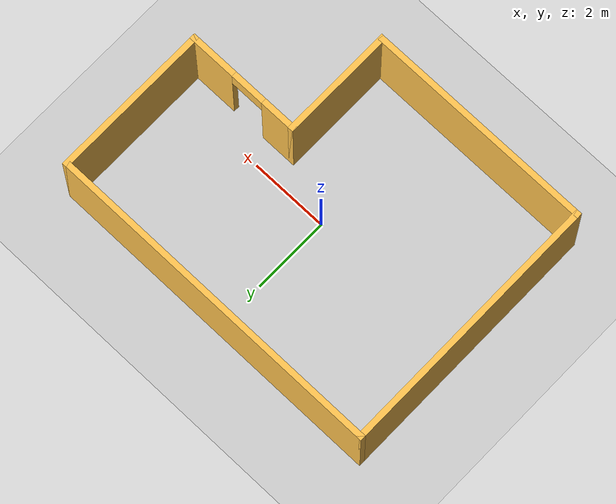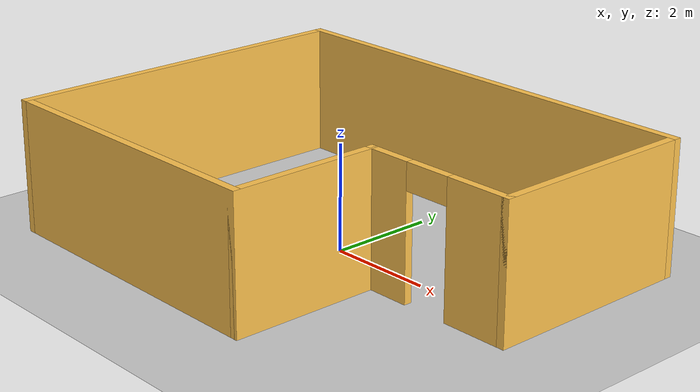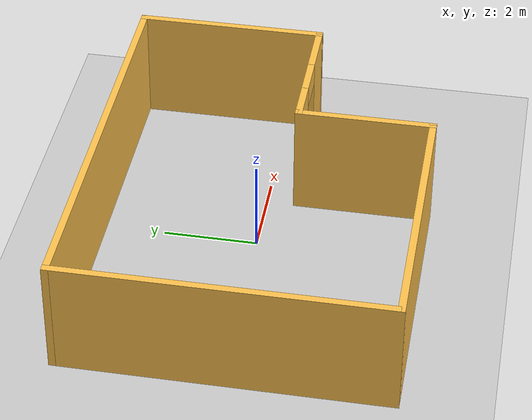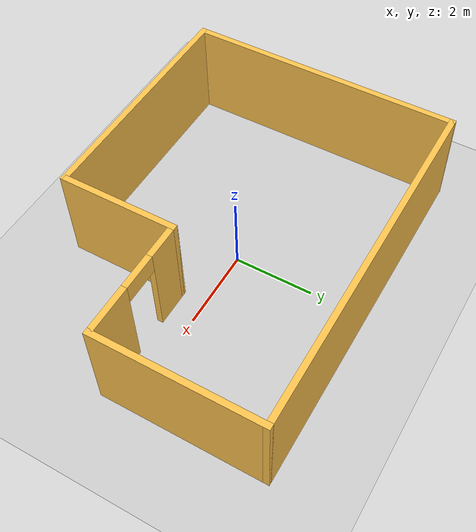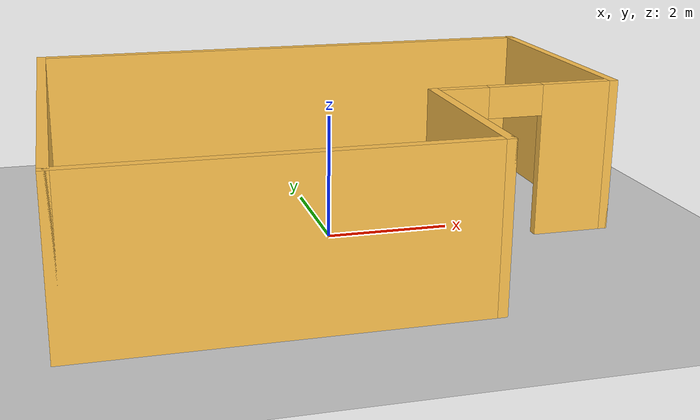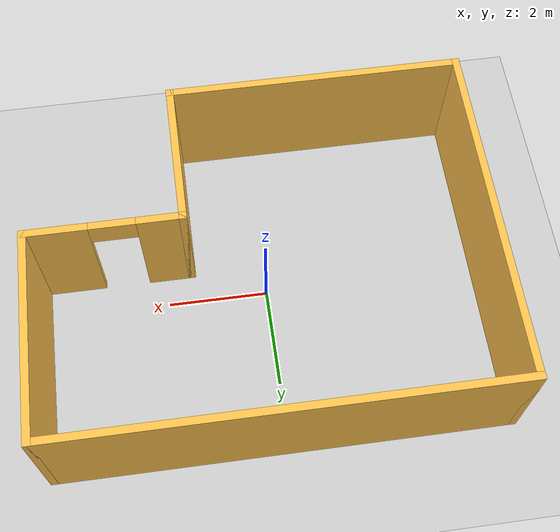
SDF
<sdf version="1.6">
 <world name="default">
  <light name="sun" type="directional">
   <pose>0 0 10 0 -0 0</pose>
   <diffuse>0.8 0.8 0.8 1</diffuse>
   <specular>0.2 0.2 0.2 1</specular>
   <attenuation>
    <range>1000</range>
    <constant>0.9</constant>
    <linear>0.01</linear>
    <quadratic>0.001</quadratic>
   </attenuation>
   <direction>-0.5 0.1 -0.9</direction>
  </light>
  <model name="ground_plane">
   <static>1</static>
   <link name="link">
    <collision name="collision">
     <geometry><plane><normal>0 0 1</normal><size>100 100</size></plane></geometry>
     <surface>
      <contact><collide_bitmask>65535</collide_bitmask></contact>
      <friction><ode><mu>100</mu><mu2>50</mu2></ode></friction>
     </surface>
    </collision>
    <visual name="visual">
     <cast_shadows>0</cast_shadows>
     <geometry><plane><normal>0 0 1</normal><size>100 100</size></plane></geometry>
     <material>
      <script><uri>file://media/materials/scripts/gazebo.material</uri><name>Gazebo/Grey</name></script>
     </material>
    </visual>
   </link>
  </model>
  <gravity>0 0 -9.8</gravity>
  <magnetic_field>6e-06 2.3e-05 -4.2e-05</magnetic_field>
  <atmosphere type="adiabatic"/>
  <physics name="default_physics" default="0" type="ode">
   <max_step_size>0.001</max_step_size>
   <real_time_factor>1</real_time_factor>
   <real_time_update_rate>1000</real_time_update_rate>
  </physics>
  <scene><ambient>0.4 0.4 0.4 1</ambient><background>0.7 0.7 0.7 1</background><shadows>1</shadows></scene>
  <spherical_coordinates>
   <surface_model>EARTH_WGS84</surface_model>
   <latitude_deg>0</latitude_deg>
   <longitude_deg>0</longitude_deg>
   <elevation>0</elevation>
   <heading_deg>0</heading_deg>
  </spherical_coordinates>
  <model name="Map01">
   <pose>0.06188 -0.07634 0 0 -0 0</pose>
   <link name="Wall_10">
    <collision name="Wall_10_Collision">
     <geometry><box><size>3 0.15 2.5</size></box></geometry>
     <pose>0 0 1.25 0 -0 0</pose>
    </collision>
    <visual name="Wall_10_Visual">
     <pose>0 0 1.25 0 -0 0</pose>
     <geometry><box><size>3 0.15 2.5</size></box></geometry>
     <material>
      <script><uri>file://media/materials/scripts/gazebo.material</uri><name>Gazebo/Grey</name></script>
      <ambient>1 0.764706 0.305882 1</ambient>
     </material>
     <meta><layer>0</layer></meta>
    </visual>
    <pose>1.425 -2 0 0 -0 1.5708</pose>
   </link>
   <link name="Wall_12">
    <pose>2.925 -0.575 0 0 -0 0</pose>
    <visual name="Wall_12_Visual_0">
     <pose>-1.09608 0 1.25 0 -0 0</pose>
     <geometry><box><size>0.957847 0.15 2.5</size></box></geometry>
     <material>
      <script><uri>file://media/materials/scripts/gazebo.material</uri><name>Gazebo/Grey</name></script>
      <ambient>1 0.764706 0.305882 1</ambient>
     </material>
     <meta><layer>0</layer></meta>
    </visual>
    <collision name="Wall_12_Collision_0">
     <geometry><box><size>0.957847 0.15 2.5</size></box></geometry>
     <pose>-1.09608 0 1.25 0 -0 0</pose>
    </collision>
    <visual name="Wall_12_Visual_1">
     <pose>0.928924 0 1.25 0 -0 0</pose>
     <geometry><box><size>1.29215 0.15 2.5</size></box></geometry>
     <material>
      <script><uri>file://media/materials/scripts/gazebo.material</uri><name>Gazebo/Grey</name></script>
      <ambient>1 0.764706 0.305882 1</ambient>
     </material>
     <meta><layer>0</layer></meta>
    </visual>
    <collision name="Wall_12_Collision_1">
     <geometry><box><size>1.29215 0.15 2.5</size></box></geometry>
     <pose>0.928924 0 1.25 0 -0 0</pose>
    </collision>
    <visual name="Wall_12_Visual_2">
     <pose>-0.167153 0 2.25 0 -0 0</pose>
     <geometry><box><size>0.9 0.15 0.5</size></box></geometry>
     <material>
      <script><uri>file://media/materials/scripts/gazebo.material</uri><name>Gazebo/Grey</name></script>
      <ambient>1 0.764706 0.305882 1</ambient>
     </material>
     <meta><layer>0</layer></meta>
    </visual>
    <collision name="Wall_12_Collision_2">
     <geometry><box><size>0.9 0.15 0.5</size></box></geometry>
     <pose>-0.167153 0 2.25 0 -0 0</pose>
    </collision>
   </link>
   <link name="Wall_15">
    <collision name="Wall_15_Collision">
     <geometry><box><size>4.15 0.15 2.5</size></box></geometry>
     <pose>0 0 1.25 0 -0 0</pose>
    </collision>
    <visual name="Wall_15_Visual">
     <pose>0 0 1.25 0 -0 0</pose>
     <geometry><box><size>4.15 0.15 2.5</size></box></geometry>
     <material>
      <script><uri>file://media/materials/scripts/gazebo.material</uri><name>Gazebo/Grey</name></script>
      <ambient>1 0.764706 0.305882 1</ambient>
     </material>
     <meta><layer>0</layer></meta>
    </visual>
    <pose>4.425 1.425 0 0 -0 1.5708</pose>
   </link>
   <link name="Wall_4">
    <collision name="Wall_4_Collision">
     <geometry><box><size>9 0.15 2.5</size></box></geometry>
     <pose>0 0 1.25 0 -0 0</pose>
    </collision>
    <visual name="Wall_4_Visual">
     <pose>0 0 1.25 0 -0 0</pose>
     <geometry><box><size>9 0.15 2.5</size></box></geometry>
     <material>
      <script><uri>file://media/materials/scripts/gazebo.material</uri><name>Gazebo/Grey</name></script>
      <ambient>1 0.764706 0.305882 1</ambient>
     </material>
     <meta><layer>0</layer></meta>
    </visual>
    <pose>0 3.425 0 0 -0 0</pose>
   </link>
   <link name="Wall_6">
    <collision name="Wall_6_Collision">
     <geometry><box><size>7 0.15 2.5</size></box></geometry>
     <pose>0 0 1.25 0 -0 0</pose>
    </collision>
    <visual name="Wall_6_Visual">
     <pose>0 0 1.25 0 -0 0</pose>
     <geometry><box><size>7 0.15 2.5</size></box></geometry>
     <material>
      <script><uri>file://media/materials/scripts/gazebo.material</uri><name>Gazebo/Grey</name></script>
      <ambient>1 0.764706 0.305882 1</ambient>
     </material>
     <meta><layer>0</layer></meta>
    </visual>
    <pose>-4.425 0 0 0 0 -1.5708</pose>
   </link>
   <link name="Wall_8">
    <collision name="Wall_8_Collision">
     <geometry><box><size>6 0.15 2.5</size></box></geometry>
     <pose>0 0 1.25 0 -0 0</pose>
    </collision>
    <visual name="Wall_8_Visual">
     <pose>0 0 1.25 0 -0 0</pose>
     <geometry><box><size>6 0.15 2.5</size></box></geometry>
     <material>
      <script><uri>file://media/materials/scripts/gazebo.material</uri><name>Gazebo/Grey</name></script>
      <ambient>1 0.764706 0.305882 1</ambient>
     </material>
     <meta><layer>0</layer></meta>
    </visual>
    <pose>-1.5 -3.425 0 0 -0 0</pose>
   </link>
   <static>1</static>
  </model>
 </world>
</sdf>
